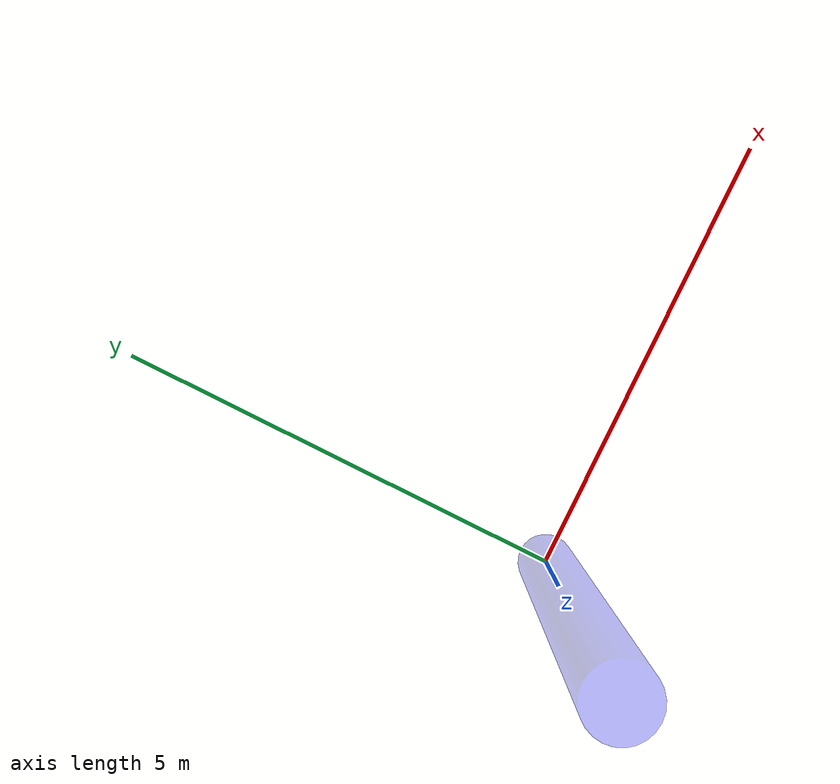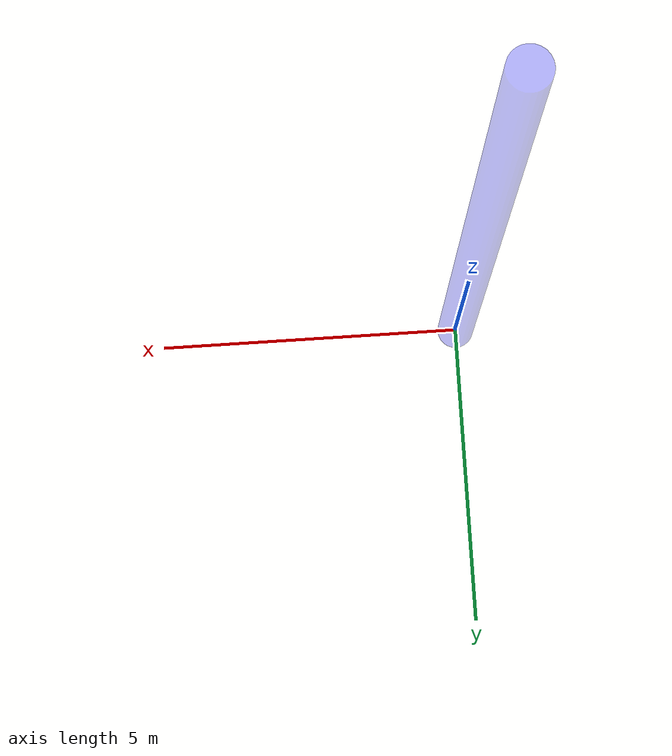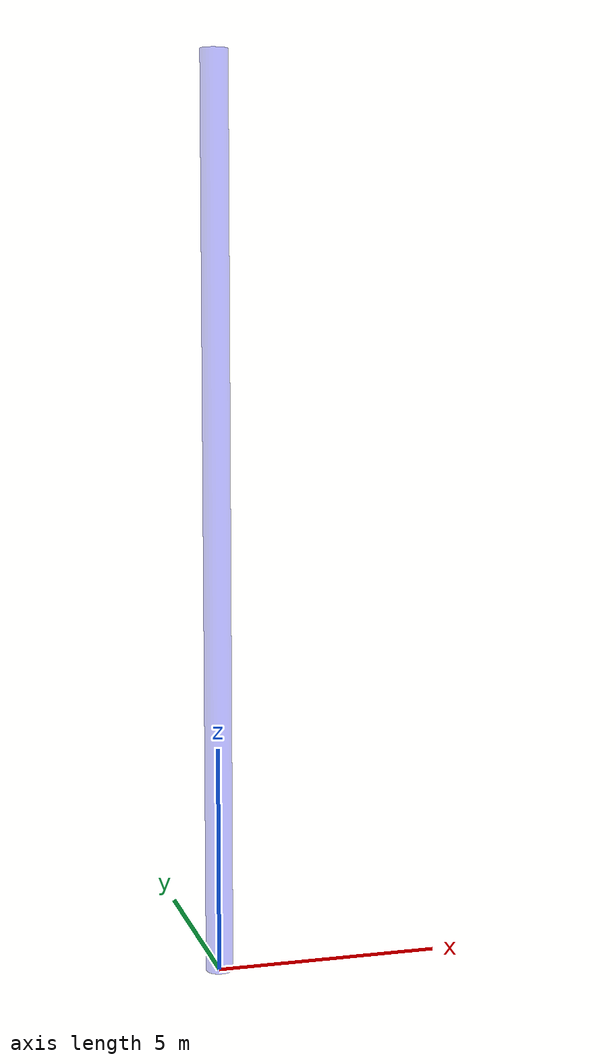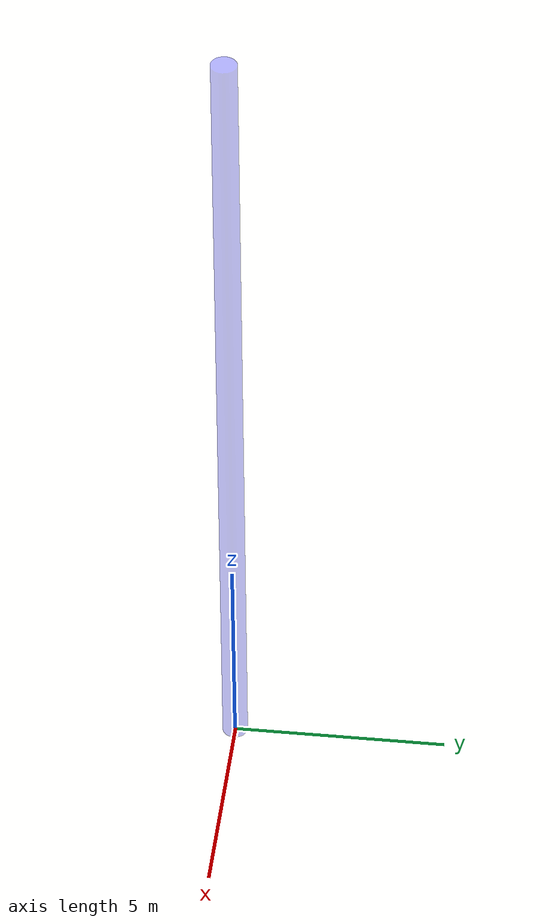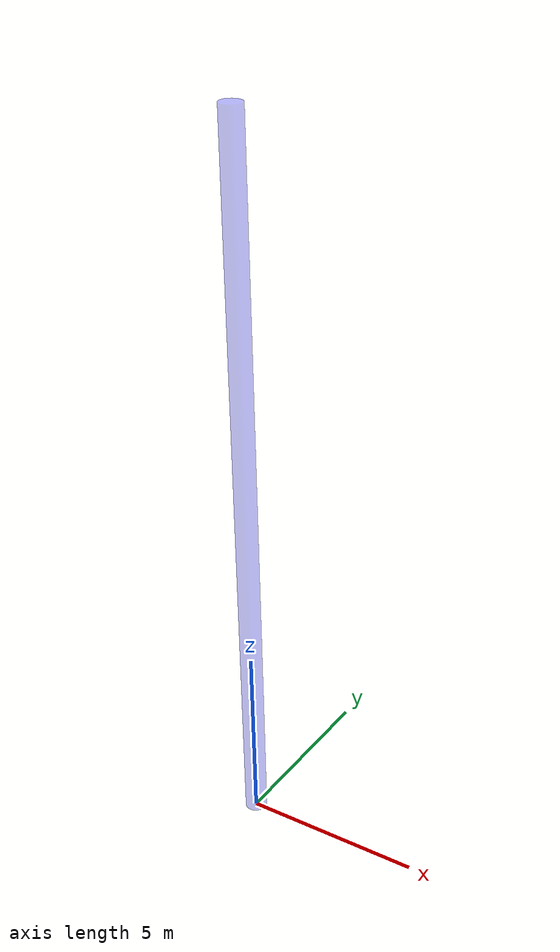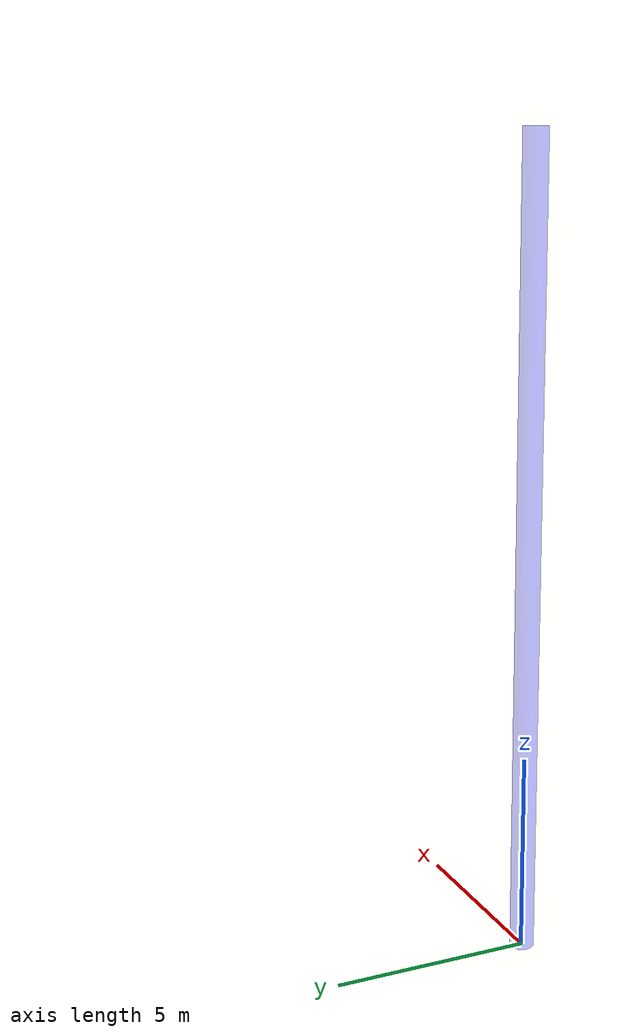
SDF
<?xml version="1.0" ?>
<sdf version="1.5">
  <model name="cylinder">
    <static>true</static>
    <pose>0 0 10.0 0 0 0</pose>
    <link name="link">
      <visual name="visual">
        <transparency>0.7</transparency>
        <geometry>
          <cylinder>
            <radius>0.3</radius>
            <length>20.0</length>
          </cylinder>
        </geometry>
        <material>
          <ambient>0 0 1 1</ambient>
        </material>
      </visual>
    </link>
  </model>
</sdf>
